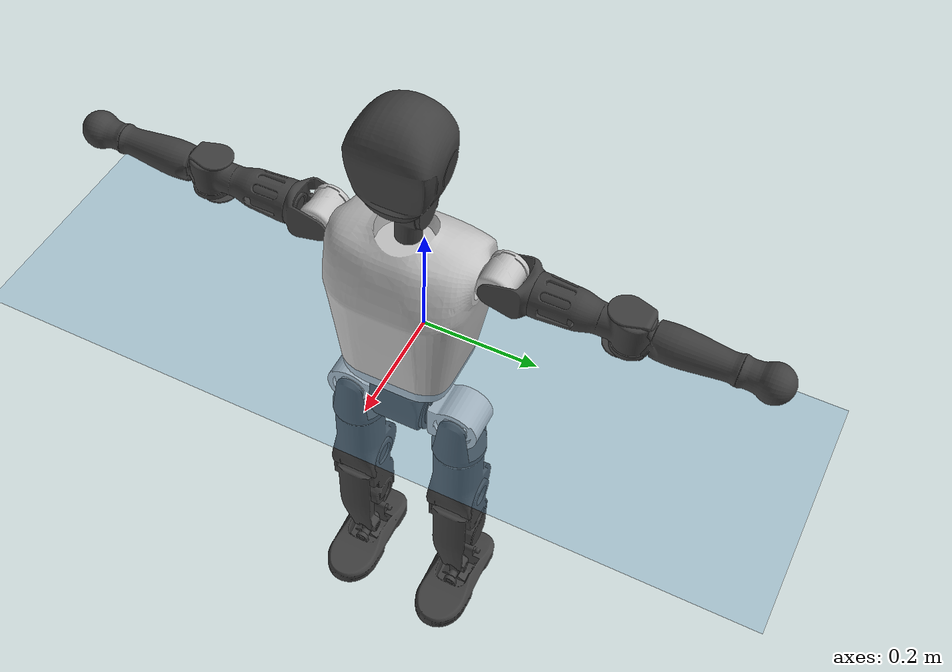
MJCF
<mujoco model="T1">
  <compiler angle="radian" assetdir="assets" balanceinertia="true" inertiafromgeom="false"/>

  <option timestep="0.005" density="1.2" viscosity="2e-05"/>

  <size nkey="1"/>

  <visual>
    <quality shadowsize="8192"/>
    <map shadowclip="0.5"/>
  </visual>

  <default>
    <default class="/">
      <joint armature="0.01" damping="0.01" frictionloss="0.1"/>
      <geom contype="0" conaffinity="0" group="1" solref="-1000 -80"/>
      <site size="0.01 0.005 0.005" group="5"/>
      <general forcelimited="true" biastype="affine" gainprm="25" biasprm="0 -25 -0.6"/>
      <default class="t1">
        <geom rgba="0.25 0.25 0.25 1"/>
        <default class="visual">
          <geom type="mesh" group="2"/>
        </default>
        <default class="collision">
          <geom group="3"/>
        </default>
        <default class="foot">
          <geom size="0.1115 0.05 0.015" type="box" condim="6" group="4" priority="1" solimp="0.015 1 0.015"/>
        </default>
        <default class="reward_collision_sphere">
          <geom group="5" rgba="1 0 0 1"/>
        </default>
      </default>
    </default>
  </default>

  <asset>
    <texture type="skybox" colorspace="auto" name="//unnamed_texture_0" builtin="gradient" rgb1="0.95 0.95 0.95" rgb2="0.95 0.95 0.95" width="100" height="600"/>
    <texture type="2d" colorspace="auto" name="texplane" builtin="checker" rgb1="0.345 0.575 0.748" rgb2="0.345 0.575 0.748" markrgb="1 1 1" width="512" height="512"/>
    <material name="MatPlane" class="/" texture="texplane" texuniform="true" texrepeat="2 2" specular="0.9"/>
    <mesh name="Trunk" class="/" file="Trunk.stl"/>
    <mesh name="H1" class="/" file="H1.stl"/>
    <mesh name="H2" class="/" file="H2.stl"/>
    <mesh name="AL1" class="/" file="AL1.stl"/>
    <mesh name="AL2" class="/" file="AL2.stl"/>
    <mesh name="AL3" class="/" file="AL3.stl"/>
    <mesh name="left_hand_link" class="/" file="left_hand_link.stl"/>
    <mesh name="AR1" class="/" file="AR1.stl"/>
    <mesh name="AR2" class="/" file="AR2.stl"/>
    <mesh name="AR3" class="/" file="AR3.stl"/>
    <mesh name="right_hand_link" class="/" file="right_hand_link.stl"/>
    <mesh name="Waist" class="/" file="Waist.stl"/>
    <mesh name="Hip_Pitch_Left" class="/" file="Hip_Pitch_Left.stl"/>
    <mesh name="Hip_Roll_Left" class="/" file="Hip_Roll_Left.stl"/>
    <mesh name="Hip_Yaw_Left" class="/" file="Hip_Yaw_Left.stl"/>
    <mesh name="Shank_Left" class="/" file="Shank_Left.stl"/>
    <mesh name="Ankle_Cross_Left" class="/" file="Ankle_Cross_Left.stl"/>
    <mesh name="left_foot_link" class="/" file="left_foot_link.stl"/>
    <mesh name="Hip_Pitch_Right" class="/" file="Hip_Pitch_Right.stl"/>
    <mesh name="Hip_Roll_Right" class="/" file="Hip_Roll_Right.stl"/>
    <mesh name="Hip_Yaw_Right" class="/" file="Hip_Yaw_Right.stl"/>
    <mesh name="Shank_Right" class="/" file="Shank_Right.stl"/>
    <mesh name="Ankle_Cross_Right" class="/" file="Ankle_Cross_Right.stl"/>
    <mesh name="right_foot_link" class="/" file="right_foot_link.stl"/>
  </asset>

  <worldbody>
    <geom name="floor" class="/" size="100 100 0.125" type="plane" group="0" material="MatPlane"/>
    <light name="toplight_shadow" class="/" pos="0 0 5" dir="0.0990148 0.0990148 -0.990148" type="directional" ambient="0.04 0.04 0.04" diffuse="0.55 0.55 0.55" specular="0.12 0.12 0.12"/>
    <light name="toplight_fill" class="/" pos="0 0 5" dir="0.0990148 0.0990148 -0.990148" type="directional" castshadow="false" ambient="0.04 0.04 0.04" diffuse="0.3 0.3 0.3" specular="0.08 0.08 0.08"/>
    <body name="trunk" childclass="t1" pos="0.000115018 0.00013581 0.000276804" quat="1 1.05116e-05 -6.7131e-05 -2.81139e-05">
      <inertial pos="0.044642 -0.000529014 0.10946" quat="0.999913 0.00310192 -0.0127541 -0.0010346" mass="9.35002" diaginertia="0.033486 0.0495742 0.0671671"/>
      <joint name="//unnamed_joint_0" type="free" armature="0" damping="0" frictionloss="0"/>
      <geom name="//unnamed_geom_1" class="visual" rgba="0.76 0.76 0.76 1" mesh="Trunk"/>
      <geom name="//unnamed_geom_2" class="collision" size="0.0691587 0.0922115 0.138317" pos="0.0489322 0 0.124197" type="box"/>
      <geom name="//unnamed_geom_3" class="reward_collision_sphere" size="0.106043" pos="0.0489322 0 0.103498"/>
      <geom name="//unnamed_geom_4" class="reward_collision_sphere" size="0.0138317" pos="0.0489322 0.0778458 0"/>
      <geom name="//unnamed_geom_5" class="reward_collision_sphere" size="0.0138317" pos="0.0489322 -0.0778458 0"/>
      <geom name="//unnamed_geom_6" class="reward_collision_sphere" size="0.0138317" pos="0.0489322 0.0979942 0.186296"/>
      <geom name="//unnamed_geom_7" class="reward_collision_sphere" size="0.0138317" pos="0.0489322 -0.0979942 0.186296"/>
      <site name="imu" pos="-0.00963686 0.00467827 0.00279145" size="0.00922115"/>
      <camera name="track" pos="0 -1.83167 0" quat="0.707107 0.707107 0 0" mode="trackcom"/>
      <camera name="ego_camera" pos="0.0994955 0 0.43469" quat="-0.5 -0.5 0.5 0.5"/>
      <body name="H1" pos="0.0481467 -0.00234009 0.248971" quat="1 0.000273029 -0.00025193 0.00030037">
        <inertial pos="-0.0012409 -0.0011643 0.0602232" quat="0.765073 -0.0097852 0.0108437 0.643778" mass="0.353463" diaginertia="8.75276e-05 0.000140557 0.000179321"/>
        <joint name="AAHead_yaw" pos="0 0 0" axis="-0.0025451 -0.00886562 0.999957" range="-1.57557 1.55201" armature="0.00986344" damping="0.0103112" frictionloss="0.0899349"/>
        <geom name="//unnamed_geom_8" class="visual" mesh="H1"/>
        <body name="H2" pos="-0.00106469 1.12245e-05 0.0641539" quat="1 -0.000226921 0.00010665 0.00039683">
          <inertial pos="0.00606719 -0.00139938 0.102296" quat="0.988174 0.107121 -0.0755098 -0.0795955" mass="0.506689" diaginertia="0.000751474 0.00124828 0.00205291"/>
          <joint name="Head_pitch" pos="0 0 0" axis="0.000749834 -1 0.000153969" range="-1.23733 0.351754" armature="0.00930496" damping="0.00915487" frictionloss="0.0924629"/>
          <geom name="//unnamed_geom_9" class="visual" mesh="H2"/>
          <geom name="//unnamed_geom_10" class="collision" size="0.0737692" pos="0.00815537 0 0.113847"/>
          <geom name="//unnamed_geom_11" class="reward_collision_sphere" size="0.0829904" pos="0.0163107 0 0.103498"/>
        </body>
      </body>
      <body name="AL1" pos="0.0470765 0.100134 0.226454" quat="1 -9.58863e-05 0.000545082 -5.22198e-05">
        <inertial pos="-0.00271084 0.0429011 -0.000910526" quat="0.502029 0.495429 -0.506903 0.495547" mass="0.40933" diaginertia="0.0004887 0.000824005 0.000346129"/>
        <joint name="Left_Shoulder_Pitch" pos="0 0 0" axis="-0.000831479 1 0.00037251" stiffness="0.00441721" range="-3.3249 1.22551" armature="0.00925673" damping="0.00574446" frictionloss="0.0908227"/>
        <geom name="//unnamed_geom_12" class="visual" rgba="0.76 0.76 0.76 1" mesh="AL1"/>
        <body name="AL2" pos="2.04622e-05 0.0454694 8.56563e-05" quat="1 -0.000203457 0.00010378 0.000441892">
          <inertial pos="0.00275281 0.035447 -0.000878885" quat="0.487888 0.511635 -0.488257 0.511663" mass="0.126956" diaginertia="0.000149642 0.000233868 0.000214908"/>
          <joint name="Left_Shoulder_Roll" pos="0 0 0" axis="-0.999998 0.00173244 -0.000427973" range="-1.56969 1.70999" armature="0.00917842" damping="0.0172629" frictionloss="0.0900729"/>
          <geom name="//unnamed_geom_13" class="visual" mesh="AL2"/>
          <body name="AL3" pos="0.0027356 0.0558002 0.00127273" quat="1 -2.27088e-06 1.11334e-05 2.50543e-05">
            <inertial pos="-0.000531421 0.0775974 0.000725233" quat="0.70525 0.708944 0.00387268 0.00253574" mass="0.790999" diaginertia="0.00466078 0.00815928 0.000729285"/>
            <joint name="Left_Elbow_Pitch" pos="0 0 0" axis="-0.000865327 -0.999998 -0.00157776" range="-2.28441 2.29227" armature="0.00860655" damping="0.00933126" frictionloss="0.0930452"/>
            <geom name="//unnamed_geom_14" class="visual" mesh="AL3"/>
            <geom name="//unnamed_geom_15" class="collision" size="0.0276635 0.0691587" pos="0 0.0457917 0" quat="0.707105 0.707108 0 0" type="cylinder"/>
            <geom name="//unnamed_geom_16" class="reward_collision_sphere" size="0.0331962"/>
            <body name="left_hand_link" pos="-0.000707389 0.135098 0.000515884" quat="1 0.000111197 -0.000172486 0.000355402">
              <inertial pos="0.00214924 0.0992108 0.000261011" quat="0.711362 0.702824 -0.00111569 -0.000279199" mass="0.254547" diaginertia="0.00291736 0.00520269 0.000248337"/>
              <joint name="Left_Elbow_Yaw" pos="0 0 0" axis="-0.00311391 0.000274248 0.999995" range="-2.45718 0.00595919" armature="0.00958855" damping="0.013861" frictionloss="0.0964187"/>
              <geom name="//unnamed_geom_17" class="visual" mesh="left_hand_link"/>
              <geom name="//unnamed_geom_18" class="collision" size="0.0276635 0.0806851" pos="0 0.119058 0" quat="0.707105 0.707108 0 0" type="cylinder"/>
              <geom name="//unnamed_geom_19" class="reward_collision_sphere" size="0.0461058"/>
              <geom name="//unnamed_geom_20" class="reward_collision_sphere" size="0.032274" pos="0 0.100742 0"/>
              <geom name="//unnamed_geom_21" class="reward_collision_sphere" size="0.032274" pos="0 0.196904 0"/>
            </body>
          </body>
        </body>
      </body>
      <body name="AR1" pos="0.0478035 -0.0979928 0.227018" quat="1 -5.57388e-05 0.000429743 -1.90897e-05">
        <inertial pos="-0.00174327 -0.0422034 -0.000233244" quat="0.503972 0.496133 -0.504392 0.495432" mass="0.411589" diaginertia="0.000498 0.000831636 0.000345876"/>
        <joint name="Right_Shoulder_Pitch" pos="0 0 0" axis="0.00023573 -1 0.000306727" stiffness="0.00584346" range="-1.21737 3.2902" armature="0.0093201" damping="0" frictionloss="0.0937507"/>
        <geom name="//unnamed_geom_22" class="visual" rgba="0.76 0.76 0.76 1" mesh="AR1"/>
        <body name="AR2" pos="0.000573365 -0.0433213 -0.00162688" quat="1 2.45878e-05 3.83034e-05 -3.20405e-05">
          <inertial pos="0.00339422 -0.0339592 -0.00163784" quat="0.512397 0.489221 -0.509449 0.48844" mass="0.125236" diaginertia="0.00014501 0.000217301 0.000207713"/>
          <joint name="Right_Shoulder_Roll" pos="0 0 0" axis="-0.999969 0.00787479 6.27521e-05" range="-1.69661 1.56646" armature="0.00886352" damping="0.0180193" frictionloss="0.0912023"/>
          <geom name="//unnamed_geom_23" class="visual" mesh="AR2"/>
          <body name="AR3" pos="0.000156886 -0.0556514 -0.000906884" quat="1 -6.88929e-05 -0.000160219 -0.00014342">
            <inertial pos="-0.00225675 -0.0791769 0.000162336" quat="0.705948 0.708263 -0.000443135 -0.000493848" mass="0.800324" diaginertia="0.00465869 0.0082427 0.00075692"/>
            <joint name="Right_Elbow_Pitch" pos="0 0 0" axis="0.00296331 0.999994 -0.00200397" range="-2.27371 2.26688" armature="0.00920945" damping="0.0133196" frictionloss="0.0835716"/>
            <geom name="//unnamed_geom_24" class="visual" mesh="AR3"/>
            <geom name="//unnamed_geom_25" class="collision" size="0.0276635 0.0691587" pos="0 -0.0457917 0" quat="0.707105 0.707108 0 0" type="cylinder"/>
            <geom name="//unnamed_geom_26" class="reward_collision_sphere" size="0.0331962"/>
            <body name="right_hand_link" pos="-0.000835398 -0.13485 -0.00030144" quat="1 -8.00692e-05 0.000141709 0.000115515">
              <inertial pos="0.000202112 -0.10014 0.00237011" quat="0.70635 0.707863 0.00022359 3.80112e-05" mass="0.256721" diaginertia="0.00291633 0.00511778 0.00025716"/>
              <joint name="Right_Elbow_Yaw" pos="0 0 0" axis="0.00298903 -0.00130348 0.999995" range="-0.007625 2.45861" armature="0.00931827" damping="0.0113044" frictionloss="0.0844947"/>
              <geom name="//unnamed_geom_27" class="visual" mesh="right_hand_link"/>
              <geom name="//unnamed_geom_28" class="collision" size="0.0276635 0.0806851" pos="0 -0.119058 0" quat="0.707105 0.707108 0 0" type="cylinder"/>
              <geom name="//unnamed_geom_29" class="reward_collision_sphere" size="0.0461058"/>
              <geom name="//unnamed_geom_30" class="reward_collision_sphere" size="0.032274" pos="0 -0.100742 0"/>
              <geom name="//unnamed_geom_31" class="reward_collision_sphere" size="0.032274" pos="0 -0.196904 0"/>
            </body>
          </body>
        </body>
      </body>
      <body name="Waist" pos="0.0517863 6.28932e-05 -0.12027" quat="1 0.000151328 0.000213124 7.90838e-05">
        <inertial pos="0.00106912 -0.00053963 0.00746356" quat="0.983715 0.00106565 -0.17973 0.000871922" mass="2.00903" diaginertia="0.00198678 0.00338753 0.00578027"/>
        <joint name="Waist" pos="0 0 0" axis="-0.000925307 0.00460517 0.999989" range="-1.56719 1.57676" armature="0.00912943" damping="0.0100374" frictionloss="0.0846478"/>
        <geom name="//unnamed_geom_32" class="visual" mesh="Waist"/>
        <body name="Hip_Pitch_Left" pos="0.000637679 0.0965531 0.000841774" quat="1 0.00068472 -0.000109929 -9.22567e-05">
          <inertial pos="0.000208482 -0.00803349 -0.019777" quat="0.974895 0.222036 0.0160443 0.00474337" mass="0.797927" diaginertia="0.000649377 0.000945604 0.00151261"/>
          <joint name="Left_Hip_Pitch" pos="0 0 0" axis="-0.000141372 0.999996 -0.00287456" range="-1.78106 1.56834" armature="0.00934394" damping="0.0164418" frictionloss="0.0919478"/>
          <geom name="//unnamed_geom_33" class="visual" rgba="0.76 0.76 0.76 1" mesh="Hip_Pitch_Left"/>
          <body name="Hip_Roll_Left" pos="0.00200256 0.000756706 -0.0206548" quat="0.999999 -0.00100462 0.000389531 -0.000167281">
            <inertial pos="0.00121645 0.000601169 -0.0557883" quat="0.707309 -0.00582593 -0.00645082 0.706851" mass="0.290346" diaginertia="0.000595461 0.000953672 0.000595439"/>
            <joint name="Left_Hip_Roll" pos="0 0 0" axis="-0.999959 0.005044 0.00757566" range="-1.52917 0.192122" armature="0.00937008" damping="0.00751603" frictionloss="0.0966966"/>
            <geom name="//unnamed_geom_34" class="visual" mesh="Hip_Roll_Left"/>
            <geom name="//unnamed_geom_35" class="reward_collision_sphere" size="0.0507164"/>
            <body name="Hip_Yaw_Left" pos="0.000545647 0.000354453 -0.0859116" quat="1 0.000766624 0.000173137 -0.000347901">
              <inertial pos="-0.00738903 0.000776201 -0.0915088" quat="0.694354 -0.0332505 -0.0317023 0.718165" mass="1.69703" diaginertia="0.00950669 0.0163061 0.0030979"/>
              <joint name="Left_Hip_Yaw" pos="0 0 0" axis="-0.000126135 -0.00187343 -0.999998" range="-0.963466 1.03659" armature="0.00912319" damping="0.00901593" frictionloss="0.0972805"/>
              <geom name="//unnamed_geom_36" class="visual" mesh="Hip_Yaw_Left"/>
              <geom name="//unnamed_geom_37" class="collision" size="0.0461058 0.0737692" type="cylinder"/>
              <body name="Shank_Left" pos="-0.0109485 0.00117931 -0.138167" quat="1 1.49123e-05 -2.37353e-05 -6.31635e-05">
                <inertial pos="-0.00695378 -0.000184892 -0.129694" quat="0.997333 0.00870671 -0.0317917 0.0651215" mass="1.35898" diaginertia="0.0125223 0.0228755 0.00221171"/>
                <joint name="Left_Knee_Pitch" pos="0 0 0" axis="-0.00242955 0.999996 -0.00132392" stiffness="0.000864042" range="-0.00864395 2.35398" armature="0.00903013" damping="0.00866925" frictionloss="0.101324"/>
                <geom name="//unnamed_geom_38" class="visual" mesh="Shank_Left"/>
                <geom name="//unnamed_geom_39" class="collision" size="0.0461058 0.0691587" pos="0 0 -0.124197" type="cylinder"/>
                <geom name="//unnamed_geom_40" class="reward_collision_sphere" size="0.0599375"/>
                <body name="Ankle_Cross_Left" pos="0.0019953 0.000575887 -0.291" quat="1 2.0738e-05 -4.84258e-06 0.000129364">
                  <inertial pos="-0.00293724 -0.000233349 -0.00877638" quat="0.442475 0.551108 0.549842 0.445163" mass="0.0569132" diaginertia="1.02929e-05 1.64757e-05 1.33287e-05"/>
                  <joint name="Left_Ankle_Pitch" pos="0 0 0" axis="0.00196674 0.999998 0.000444157" range="-0.870188 0.344035" armature="0.0101739" damping="0.0149865" frictionloss="0.0961268"/>
                  <geom name="//unnamed_geom_41" class="visual" mesh="Ankle_Cross_Left"/>
                  <body name="left_foot_link" pos="0.00147322 0.000894242 -0.0117813" quat="1 -3.25485e-05 -6.48813e-05 -3.88429e-05">
                    <inertial pos="-0.00204147 0.000419128 -0.00933005" quat="-0.000561741 0.621558 7.46945e-05 0.783368" mass="0.541942" diaginertia="0.000978344 0.00153331 0.00257096"/>
                    <joint name="Left_Ankle_Roll" pos="0 0 0" axis="-0.999999 -0.000693354 -0.00121295" range="-0.450304 0.454773" armature="0.0091185" damping="0.00026418" frictionloss="0.0913951"/>
                    <geom name="//unnamed_geom_42" class="visual" mesh="left_foot_link"/>
                    <geom name="left_foot" class="foot" size="0.101308 0.0446084 0.0145208" pos="0.00815537 0 -0.0155246"/>
                    <geom name="//unnamed_geom_44" class="reward_collision_sphere" size="0.04795" pos="0.00815537 0 -0.0155246"/>
                    <geom name="//unnamed_geom_45" class="reward_collision_sphere" size="0.0276635" pos="0.077476 -0.0210642 -0.0155246"/>
                    <geom name="//unnamed_geom_46" class="reward_collision_sphere" size="0.0276635" pos="-0.0570876 -0.0210642 -0.0155246"/>
                    <site name="left_foot" class="foot" pos="0.00815537 0 -0.0155246" size="0.00922115"/>
                  </body>
                </body>
              </body>
            </body>
          </body>
        </body>
        <body name="Hip_Pitch_Right" pos="0.000124972 -0.096983 0.000237009" quat="1 4.29292e-05 -6.42707e-06 -9.35446e-05">
          <inertial pos="0.000175199 0.00690945 -0.0198262" quat="0.97354 -0.228187 0.0122425 -0.000384616" mass="0.805289" diaginertia="0.000635335 0.000964312 0.00146991"/>
          <joint name="Right_Hip_Pitch" pos="0 0 0" axis="0.00571878 -0.999984 0.000209124" range="-1.61786 1.84036" armature="0.00936144" damping="0.0139848" frictionloss="0.0836871"/>
          <geom name="//unnamed_geom_47" class="visual" rgba="0.76 0.76 0.76 1" mesh="Hip_Pitch_Right"/>
          <body name="Hip_Roll_Right" pos="0.00218389 0.000277619 -0.0214141" quat="1 -0.000127072 0.000242858 0.00023441">
            <inertial pos="0.00192956 -0.00110269 -0.054585" quat="0.707921 -0.00200126 -0.00399185 0.706278" mass="0.298538" diaginertia="0.000619493 0.000977397 0.000616673"/>
            <joint name="Right_Hip_Roll" pos="0 0 0" axis="-0.999916 -0.00734849 -0.0107042" stiffness="0.00396145" range="-0.200824 1.58547" armature="0.00923377" damping="0.00927185" frictionloss="0.0908182"/>
            <geom name="//unnamed_geom_48" class="visual" mesh="Hip_Roll_Right"/>
            <geom name="//unnamed_geom_49" class="reward_collision_sphere" size="0.0507164"/>
            <body name="Hip_Yaw_Right" pos="-0.00084119 -0.00101173 -0.0862737" quat="1 -0.000198988 0.000153752 7.4239e-06">
              <inertial pos="-0.00596787 0.00127447 -0.0923086" quat="0.70954 -0.0384149 -0.0397961 0.702491" mass="1.70302" diaginertia="0.00935124 0.0164805 0.00310586"/>
              <joint name="Right_Hip_Yaw" pos="0 0 0" axis="-0.00197184 2.53261e-05 -0.999998" range="-0.98477 0.989485" armature="0.00933317" damping="0.0142332" frictionloss="0.0926333"/>
              <geom name="//unnamed_geom_50" class="visual" mesh="Hip_Yaw_Right"/>
              <geom name="//unnamed_geom_51" class="collision" size="0.0461058 0.0737692" type="cylinder"/>
              <body name="Shank_Right" pos="-0.0116875 -0.00242179 -0.138326" quat="1 0.000108109 0.000109616 -6.52125e-05">
                <inertial pos="-0.00705016 0.00207199 -0.126251" quat="0.999282 0.00378235 -0.0211243 -0.0312092" mass="1.42337" diaginertia="0.0125019 0.0223813 0.00235732"/>
                <joint name="Right_Knee_Pitch" pos="0 0 0" axis="0.000932279 -0.999998 -0.00185224" range="-2.3315 -0.00132742" armature="0.00919678" damping="0.00193051" frictionloss="0.0961086"/>
                <geom name="//unnamed_geom_52" class="visual" mesh="Shank_Right"/>
                <geom name="//unnamed_geom_53" class="collision" size="0.0461058 0.0691587" pos="0 0 -0.124197" type="cylinder"/>
                <geom name="//unnamed_geom_54" class="reward_collision_sphere" size="0.0599375"/>
                <body name="Ankle_Cross_Right" pos="-0.000774379 -0.000543781 -0.290699" quat="1 -0.000131419 -0.00023477 -3.34454e-05">
                  <inertial pos="-0.00219511 -0.000857235 -0.00908464" quat="0.449883 0.553777 0.546931 0.437953" mass="0.0575585" diaginertia="1.04996e-05 1.57747e-05 1.31913e-05"/>
                  <joint name="Right_Ankle_Pitch" pos="0 0 0" axis="-0.00105783 -0.999998 0.00169618" range="-0.365236 0.867825" armature="0.00932775" damping="0" frictionloss="0.0922554"/>
                  <geom name="//unnamed_geom_55" class="visual" mesh="Ankle_Cross_Right"/>
                  <body name="right_foot_link" pos="-0.00147391 -0.00101375 -0.0106516" quat="1 3.62576e-05 -5.88996e-06 1.39356e-05">
                    <inertial pos="0.000536306 -0.000844304 -0.00788684" quat="0.000979544 0.620836 -0.000105059 0.783939" mass="0.540659" diaginertia="0.000991231 0.00151955 0.00259219"/>
                    <joint name="Right_Ankle_Roll" pos="0 0 0" axis="-1 0.000270959 0.000489691" range="-0.440159 0.439182" armature="0.00913106" damping="0.00765368" frictionloss="0.091469"/>
                    <geom name="//unnamed_geom_56" class="visual" mesh="right_foot_link"/>
                    <geom name="right_foot" class="foot" size="0.0983789 0.043028 0.0135207" pos="0.00815537 0 -0.0155246"/>
                    <geom name="//unnamed_geom_58" class="reward_collision_sphere" size="0.0368846"/>
                    <geom name="//unnamed_geom_59" class="reward_collision_sphere" size="0.0276635" pos="0.00815537 0 -0.0155246"/>
                    <geom name="//unnamed_geom_60" class="reward_collision_sphere" size="0.0276635" pos="0.077476 0.0210642 -0.0155246"/>
                    <geom name="//unnamed_geom_61" class="reward_collision_sphere" size="0.0276635" pos="-0.0570876 0.0210642 -0.0155246"/>
                    <site name="right_foot" class="foot" pos="0.00815537 0 -0.0155246" size="0.00922115"/>
                  </body>
                </body>
              </body>
            </body>
          </body>
        </body>
      </body>
    </body>
  </worldbody>

  <contact>
    <pair class="/" geom1="floor" geom2="left_foot" name="//unnamed_contact_0"/>
    <pair class="/" geom1="floor" geom2="right_foot" name="//unnamed_contact_1"/>
  </contact>

  <actuator>
    <general name="AAHead_yaw" class="/" joint="AAHead_yaw" forcerange="-6.54346 6.54346" gainprm="22.0327" biasprm="0 -22.0327 -0.528169"/>
    <general name="Head_pitch" class="/" joint="Head_pitch" forcerange="-6.38289 6.38289" gainprm="22.0327" biasprm="0 -22.0327 -0.528169"/>
    <general name="Left_Shoulder_Pitch" class="/" joint="Left_Shoulder_Pitch" forcerange="-16.8409 16.8409" gainprm="22.0327" biasprm="0 -22.0327 -0.528169"/>
    <general name="Left_Shoulder_Roll" class="/" joint="Left_Shoulder_Roll" forcerange="-16.3542 16.3542" gainprm="22.0327" biasprm="0 -22.0327 -0.528169"/>
    <general name="Left_Elbow_Pitch" class="/" joint="Left_Elbow_Pitch" forcerange="-17.0434 17.0434" gainprm="22.0327" biasprm="0 -22.0327 -0.528169"/>
    <general name="Left_Elbow_Yaw" class="/" joint="Left_Elbow_Yaw" forcerange="-16.496 16.496" gainprm="22.0327" biasprm="0 -22.0327 -0.528169"/>
    <general name="Right_Shoulder_Pitch" class="/" joint="Right_Shoulder_Pitch" forcerange="-17.2827 17.2827" gainprm="22.0327" biasprm="0 -22.0327 -0.528169"/>
    <general name="Right_Shoulder_Roll" class="/" joint="Right_Shoulder_Roll" forcerange="-16.9934 16.9934" gainprm="22.0327" biasprm="0 -22.0327 -0.528169"/>
    <general name="Right_Elbow_Pitch" class="/" joint="Right_Elbow_Pitch" forcerange="-16.7316 16.7316" gainprm="22.0327" biasprm="0 -22.0327 -0.528169"/>
    <general name="Right_Elbow_Yaw" class="/" joint="Right_Elbow_Yaw" forcerange="-16.1368 16.1368" gainprm="22.0327" biasprm="0 -22.0327 -0.528169"/>
    <general name="Waist" class="/" joint="Waist" forcerange="-27.7201 27.7201" gainprm="22.0327" biasprm="0 -22.0327 -0.528169"/>
    <general name="Left_Hip_Pitch" class="/" joint="Left_Hip_Pitch" forcerange="-41.6445 41.6445" gainprm="22.0327" biasprm="0 -22.0327 -0.528169"/>
    <general name="Left_Hip_Roll" class="/" joint="Left_Hip_Roll" forcerange="-27.535 27.535" gainprm="22.0327" biasprm="0 -22.0327 -0.528169"/>
    <general name="Left_Hip_Yaw" class="/" joint="Left_Hip_Yaw" forcerange="-27.038 27.038" gainprm="22.0327" biasprm="0 -22.0327 -0.528169"/>
    <general name="Left_Knee_Pitch" class="/" joint="Left_Knee_Pitch" forcerange="-53.2192 53.2192" gainprm="22.0327" biasprm="0 -22.0327 -0.528169"/>
    <general name="Left_Ankle_Pitch" class="/" joint="Left_Ankle_Pitch" forcerange="-18.8566 18.8566" gainprm="22.0327" biasprm="0 -22.0327 -0.528169"/>
    <general name="Left_Ankle_Roll" class="/" joint="Left_Ankle_Roll" forcerange="-13.7171 13.7171" gainprm="22.0327" biasprm="0 -22.0327 -0.528169"/>
    <general name="Right_Hip_Pitch" class="/" joint="Right_Hip_Pitch" forcerange="-40.6404 40.6404" gainprm="22.0327" biasprm="0 -22.0327 -0.528169"/>
    <general name="Right_Hip_Roll" class="/" joint="Right_Hip_Roll" forcerange="-27.563 27.563" gainprm="22.0327" biasprm="0 -22.0327 -0.528169"/>
    <general name="Right_Hip_Yaw" class="/" joint="Right_Hip_Yaw" forcerange="-28.7265 28.7265" gainprm="22.0327" biasprm="0 -22.0327 -0.528169"/>
    <general name="Right_Knee_Pitch" class="/" joint="Right_Knee_Pitch" forcerange="-53.5251 53.5251" gainprm="22.0327" biasprm="0 -22.0327 -0.528169"/>
    <general name="Right_Ankle_Pitch" class="/" joint="Right_Ankle_Pitch" forcerange="-17.4451 17.4451" gainprm="22.0327" biasprm="0 -22.0327 -0.528169"/>
    <general name="Right_Ankle_Roll" class="/" joint="Right_Ankle_Roll" forcerange="-13.3182 13.3182" gainprm="22.0327" biasprm="0 -22.0327 -0.528169"/>
  </actuator>

  <sensor>
    <gyro site="imu" name="imu_angular_velocity"/>
    <velocimeter site="imu" name="imu_linear_velocity"/>
    <framelinvel objtype="site" objname="left_foot" name="left_foot_global_linear_velocity"/>
    <framelinvel objtype="site" objname="right_foot" name="right_foot_global_linear_velocity"/>
  </sensor>

  <keyframe>
    <key name="home" qpos="0 0 0.6385 1 0 0 0 0 0 0 1.4 0 -0.4 0 -1.4 0 0.4 0 -0.4 0 0 0.8 -0.4 0 0.4 0 0 -0.8 0.4 0"/>
  </keyframe>
</mujoco>
